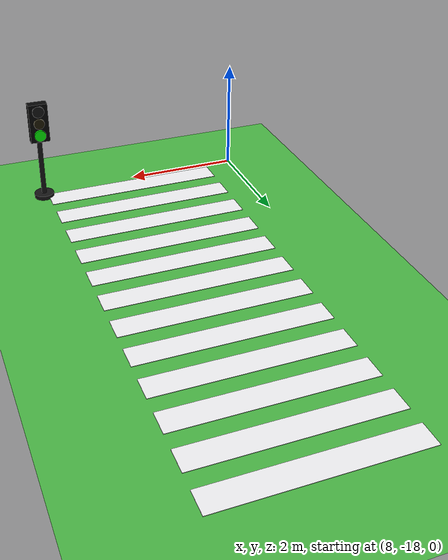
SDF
<sdf version="1.10">
 <world name="city_second">
  <model name="ground_plane">
   <static>true</static>
   <link name="link">
    <collision name="collision">
     <geometry><plane><normal>0 0 1</normal><size>300 300</size></plane></geometry>
    </collision>
    <visual name="visual">
     <geometry><plane><normal>0 0 1</normal><size>300 300</size></plane></geometry>
     <material>
      <ambient>0.280000001 0.689999998 0.25999999 1</ambient>
      <diffuse>0.280000001 0.689999998 0.25999999 1</diffuse>
      <specular>0.0299999993 0.0299999993 0.0299999993 1</specular>
     </material>
    </visual>
    <inertial>
     <mass>1</mass>
     <inertia><ixx>1</ixx><ixy>0</ixy><ixz>0</ixz><iyy>1</iyy><iyz>0</iyz><izz>1</izz></inertia>
    </inertial>
   </link>
  </model>
  <model name="crosswalk_v_2_1_east_5_3">
   <static>true</static>
   <pose>10.1084 -13.809400000000002 0.017000000000000001 0 0 0</pose>
   <link name="stripe_1">
    <collision name="collision">
     <geometry><box><size>3.2000000000000002 0.41999999999999998 0.01</size></box></geometry>
    </collision>
    <visual name="visual">
     <geometry><box><size>3.2000000000000002 0.41999999999999998 0.01</size></box></geometry>
     <material>
      <ambient>0.920000017 0.920000017 0.930000007 1</ambient>
      <diffuse>0.920000017 0.920000017 0.930000007 1</diffuse>
      <specular>0.0299999993 0.0299999993 0.0299999993 1</specular>
     </material>
    </visual>
    <pose>0 -3.8500000000000001 0 0 0 0</pose>
    <inertial>
     <mass>1</mass>
     <inertia><ixx>1</ixx><ixy>0</ixy><ixz>0</ixz><iyy>1</iyy><iyz>0</iyz><izz>1</izz></inertia>
    </inertial>
   </link>
   <link name="stripe_2">
    <collision name="collision">
     <geometry><box><size>3.2000000000000002 0.41999999999999998 0.01</size></box></geometry>
    </collision>
    <visual name="visual">
     <geometry><box><size>3.2000000000000002 0.41999999999999998 0.01</size></box></geometry>
     <material>
      <ambient>0.920000017 0.920000017 0.930000007 1</ambient>
      <diffuse>0.920000017 0.920000017 0.930000007 1</diffuse>
      <specular>0.0299999993 0.0299999993 0.0299999993 1</specular>
     </material>
    </visual>
    <pose>0 -3.1499999999999968 0 0 0 0</pose>
    <inertial>
     <mass>1</mass>
     <inertia><ixx>1</ixx><ixy>0</ixy><ixz>0</ixz><iyy>1</iyy><iyz>0</iyz><izz>1</izz></inertia>
    </inertial>
   </link>
   <link name="stripe_3">
    <collision name="collision">
     <geometry><box><size>3.2000000000000002 0.41999999999999998 0.01</size></box></geometry>
    </collision>
    <visual name="visual">
     <geometry><box><size>3.2000000000000002 0.41999999999999998 0.01</size></box></geometry>
     <material>
      <ambient>0.920000017 0.920000017 0.930000007 1</ambient>
      <diffuse>0.920000017 0.920000017 0.930000007 1</diffuse>
      <specular>0.0299999993 0.0299999993 0.0299999993 1</specular>
     </material>
    </visual>
    <pose>0 -2.4499999999999975 0 0 0 0</pose>
    <inertial>
     <mass>1</mass>
     <inertia><ixx>1</ixx><ixy>0</ixy><ixz>0</ixz><iyy>1</iyy><iyz>0</iyz><izz>1</izz></inertia>
    </inertial>
   </link>
   <link name="stripe_4">
    <collision name="collision">
     <geometry><box><size>3.2000000000000002 0.41999999999999998 0.01</size></box></geometry>
    </collision>
    <visual name="visual">
     <geometry><box><size>3.2000000000000002 0.41999999999999998 0.01</size></box></geometry>
     <material>
      <ambient>0.920000017 0.920000017 0.930000007 1</ambient>
      <diffuse>0.920000017 0.920000017 0.930000007 1</diffuse>
      <specular>0.0299999993 0.0299999993 0.0299999993 1</specular>
     </material>
    </visual>
    <pose>0 -1.7499999999999982 0 0 0 0</pose>
    <inertial>
     <mass>1</mass>
     <inertia><ixx>1</ixx><ixy>0</ixy><ixz>0</ixz><iyy>1</iyy><iyz>0</iyz><izz>1</izz></inertia>
    </inertial>
   </link>
   <link name="stripe_5">
    <collision name="collision">
     <geometry><box><size>3.2000000000000002 0.41999999999999998 0.01</size></box></geometry>
    </collision>
    <visual name="visual">
     <geometry><box><size>3.2000000000000002 0.41999999999999998 0.01</size></box></geometry>
     <material>
      <ambient>0.920000017 0.920000017 0.930000007 1</ambient>
      <diffuse>0.920000017 0.920000017 0.930000007 1</diffuse>
      <specular>0.0299999993 0.0299999993 0.0299999993 1</specular>
     </material>
    </visual>
    <pose>0 -1.0499999999999989 0 0 0 0</pose>
    <inertial>
     <mass>1</mass>
     <inertia><ixx>1</ixx><ixy>0</ixy><ixz>0</ixz><iyy>1</iyy><iyz>0</iyz><izz>1</izz></inertia>
    </inertial>
   </link>
   <link name="stripe_6">
    <collision name="collision">
     <geometry><box><size>3.2000000000000002 0.41999999999999998 0.01</size></box></geometry>
    </collision>
    <visual name="visual">
     <geometry><box><size>3.2000000000000002 0.41999999999999998 0.01</size></box></geometry>
     <material>
      <ambient>0.920000017 0.920000017 0.930000007 1</ambient>
      <diffuse>0.920000017 0.920000017 0.930000007 1</diffuse>
      <specular>0.0299999993 0.0299999993 0.0299999993 1</specular>
     </material>
    </visual>
    <pose>0 -0.34999999999999787 0 0 0 0</pose>
    <inertial>
     <mass>1</mass>
     <inertia><ixx>1</ixx><ixy>0</ixy><ixz>0</ixz><iyy>1</iyy><iyz>0</iyz><izz>1</izz></inertia>
    </inertial>
   </link>
   <link name="stripe_7">
    <collision name="collision">
     <geometry><box><size>3.2000000000000002 0.41999999999999998 0.01</size></box></geometry>
    </collision>
    <visual name="visual">
     <geometry><box><size>3.2000000000000002 0.41999999999999998 0.01</size></box></geometry>
     <material>
      <ambient>0.920000017 0.920000017 0.930000007 1</ambient>
      <diffuse>0.920000017 0.920000017 0.930000007 1</diffuse>
      <specular>0.0299999993 0.0299999993 0.0299999993 1</specular>
     </material>
    </visual>
    <pose>0 0.35000000000000142 0 0 0 0</pose>
    <inertial>
     <mass>1</mass>
     <inertia><ixx>1</ixx><ixy>0</ixy><ixz>0</ixz><iyy>1</iyy><iyz>0</iyz><izz>1</izz></inertia>
    </inertial>
   </link>
   <link name="stripe_8">
    <collision name="collision">
     <geometry><box><size>3.2000000000000002 0.41999999999999998 0.01</size></box></geometry>
    </collision>
    <visual name="visual">
     <geometry><box><size>3.2000000000000002 0.41999999999999998 0.01</size></box></geometry>
     <material>
      <ambient>0.920000017 0.920000017 0.930000007 1</ambient>
      <diffuse>0.920000017 0.920000017 0.930000007 1</diffuse>
      <specular>0.0299999993 0.0299999993 0.0299999993 1</specular>
     </material>
    </visual>
    <pose>0 1.0500000000000025 0 0 0 0</pose>
    <inertial>
     <mass>1</mass>
     <inertia><ixx>1</ixx><ixy>0</ixy><ixz>0</ixz><iyy>1</iyy><iyz>0</iyz><izz>1</izz></inertia>
    </inertial>
   </link>
   <link name="stripe_9">
    <collision name="collision">
     <geometry><box><size>3.2000000000000002 0.41999999999999998 0.01</size></box></geometry>
    </collision>
    <visual name="visual">
     <geometry><box><size>3.2000000000000002 0.41999999999999998 0.01</size></box></geometry>
     <material>
      <ambient>0.920000017 0.920000017 0.930000007 1</ambient>
      <diffuse>0.920000017 0.920000017 0.930000007 1</diffuse>
      <specular>0.0299999993 0.0299999993 0.0299999993 1</specular>
     </material>
    </visual>
    <pose>0 1.7500000000000018 0 0 0 0</pose>
    <inertial>
     <mass>1</mass>
     <inertia><ixx>1</ixx><ixy>0</ixy><ixz>0</ixz><iyy>1</iyy><iyz>0</iyz><izz>1</izz></inertia>
    </inertial>
   </link>
   <link name="stripe_10">
    <collision name="collision">
     <geometry><box><size>3.2000000000000002 0.41999999999999998 0.01</size></box></geometry>
    </collision>
    <visual name="visual">
     <geometry><box><size>3.2000000000000002 0.41999999999999998 0.01</size></box></geometry>
     <material>
      <ambient>0.920000017 0.920000017 0.930000007 1</ambient>
      <diffuse>0.920000017 0.920000017 0.930000007 1</diffuse>
      <specular>0.0299999993 0.0299999993 0.0299999993 1</specular>
     </material>
    </visual>
    <pose>0 2.4500000000000011 0 0 0 0</pose>
    <inertial>
     <mass>1</mass>
     <inertia><ixx>1</ixx><ixy>0</ixy><ixz>0</ixz><iyy>1</iyy><iyz>0</iyz><izz>1</izz></inertia>
    </inertial>
   </link>
   <link name="stripe_11">
    <collision name="collision">
     <geometry><box><size>3.2000000000000002 0.41999999999999998 0.01</size></box></geometry>
    </collision>
    <visual name="visual">
     <geometry><box><size>3.2000000000000002 0.41999999999999998 0.01</size></box></geometry>
     <material>
      <ambient>0.920000017 0.920000017 0.930000007 1</ambient>
      <diffuse>0.920000017 0.920000017 0.930000007 1</diffuse>
      <specular>0.0299999993 0.0299999993 0.0299999993 1</specular>
     </material>
    </visual>
    <pose>0 3.1500000000000021 0 0 0 0</pose>
    <inertial>
     <mass>1</mass>
     <inertia><ixx>1</ixx><ixy>0</ixy><ixz>0</ixz><iyy>1</iyy><iyz>0</iyz><izz>1</izz></inertia>
    </inertial>
   </link>
   <link name="stripe_12">
    <collision name="collision">
     <geometry><box><size>3.2000000000000002 0.41999999999999998 0.01</size></box></geometry>
    </collision>
    <visual name="visual">
     <geometry><box><size>3.2000000000000002 0.41999999999999998 0.01</size></box></geometry>
     <material>
      <ambient>0.920000017 0.920000017 0.930000007 1</ambient>
      <diffuse>0.920000017 0.920000017 0.930000007 1</diffuse>
      <specular>0.0299999993 0.0299999993 0.0299999993 1</specular>
     </material>
    </visual>
    <pose>0 3.8500000000000014 0 0 0 0</pose>
    <inertial>
     <mass>1</mass>
     <inertia><ixx>1</ixx><ixy>0</ixy><ixz>0</ixz><iyy>1</iyy><iyz>0</iyz><izz>1</izz></inertia>
    </inertial>
   </link>
  </model>
  <model name="simple_traffic_light_green_north_1_2">
   <static>true</static>
   <pose>11.777170378205799 -17.868153238986416 0 0 0 0</pose>
   <link name="base">
    <pose>0 0 0.040000000000000001 0 0 0</pose>
    <collision name="collision">
     <geometry>
      <cylinder><radius>0.17999999999999999</radius><length>0.080000000000000002</length></cylinder>
     </geometry>
    </collision>
    <visual name="visual">
     <geometry>
      <cylinder><radius>0.17999999999999999</radius><length>0.080000000000000002</length></cylinder>
     </geometry>
     <material>
      <ambient>0.0799999982 0.0799999982 0.0799999982 1</ambient>
      <diffuse>0.0799999982 0.0799999982 0.0799999982 1</diffuse>
      <specular>0.150000006 0.150000006 0.150000006 1</specular>
      <emissive>0 0 0 1</emissive>
     </material>
    </visual>
    <inertial>
     <mass>1</mass>
     <inertia><ixx>1</ixx><ixy>0</ixy><ixz>0</ixz><iyy>1</iyy><iyz>0</iyz><izz>1</izz></inertia>
    </inertial>
   </link>
   <link name="pole">
    <pose>0 0 0.80000000000000004 0 0 0</pose>
    <collision name="collision">
     <geometry>
      <cylinder><radius>0.044999999999999998</radius><length>1.6000000000000001</length></cylinder>
     </geometry>
    </collision>
    <visual name="visual">
     <geometry>
      <cylinder><radius>0.044999999999999998</radius><length>1.6000000000000001</length></cylinder>
     </geometry>
     <material>
      <ambient>0.0799999982 0.0799999982 0.0799999982 1</ambient>
      <diffuse>0.0799999982 0.0799999982 0.0799999982 1</diffuse>
      <specular>0.150000006 0.150000006 0.150000006 1</specular>
      <emissive>0 0 0 1</emissive>
     </material>
    </visual>
    <inertial>
     <mass>1</mass>
     <inertia><ixx>1</ixx><ixy>0</ixy><ixz>0</ixz><iyy>1</iyy><iyz>0</iyz><izz>1</izz></inertia>
    </inertial>
   </link>
   <link name="signal_box">
    <pose>0 0.089999999999999858 1.55 0 0 0</pose>
    <collision name="collision">
     <geometry><box><size>0.34000000000000002 0.16 0.71999999999999997</size></box></geometry>
    </collision>
    <visual name="visual">
     <geometry><box><size>0.34000000000000002 0.16 0.71999999999999997</size></box></geometry>
     <material>
      <ambient>0.0199999996 0.0199999996 0.0199999996 1</ambient>
      <diffuse>0.0199999996 0.0199999996 0.0199999996 1</diffuse>
      <specular>0.150000006 0.150000006 0.150000006 1</specular>
      <emissive>0 0 0 1</emissive>
     </material>
    </visual>
    <inertial>
     <mass>1</mass>
     <inertia><ixx>1</ixx><ixy>0</ixy><ixz>0</ixz><iyy>1</iyy><iyz>0</iyz><izz>1</izz></inertia>
    </inertial>
   </link>
   <link name="red_lens">
    <pose>0 0.18100000000000094 1.78 1.5707963268000003 0 0</pose>
    <collision name="collision">
     <geometry><cylinder><radius>0.105</radius><length>0.035000000000000003</length></cylinder></geometry>
    </collision>
    <visual name="visual">
     <geometry><cylinder><radius>0.105</radius><length>0.035000000000000003</length></cylinder></geometry>
     <material>
      <ambient>0.0799999982 0.0799999982 0.0799999982 1</ambient>
      <diffuse>0.0799999982 0.0799999982 0.0799999982 1</diffuse>
      <specular>0.150000006 0.150000006 0.150000006 1</specular>
      <emissive>0 0 0 1</emissive>
     </material>
    </visual>
    <inertial>
     <mass>1</mass>
     <inertia><ixx>1</ixx><ixy>0</ixy><ixz>0</ixz><iyy>1</iyy><iyz>0</iyz><izz>1</izz></inertia>
    </inertial>
   </link>
   <link name="yellow_lens">
    <pose>0 0.18199999999999861 1.55 1.5707963268000003 0 0</pose>
    <collision name="collision">
     <geometry>
      <cylinder><radius>0.095000000000000001</radius><length>0.035000000000000003</length></cylinder>
     </geometry>
    </collision>
    <visual name="visual">
     <geometry>
      <cylinder><radius>0.095000000000000001</radius><length>0.035000000000000003</length></cylinder>
     </geometry>
     <material>
      <ambient>0.119999997 0.100000001 0.0199999996 1</ambient>
      <diffuse>0.119999997 0.100000001 0.0199999996 1</diffuse>
      <specular>0.150000006 0.150000006 0.150000006 1</specular>
      <emissive>0 0 0 1</emissive>
     </material>
    </visual>
    <inertial>
     <mass>1</mass>
     <inertia><ixx>1</ixx><ixy>0</ixy><ixz>0</ixz><iyy>1</iyy><iyz>0</iyz><izz>1</izz></inertia>
    </inertial>
   </link>
   <link name="green_lens">
    <pose>0 0.18299999999999983 1.3200000000000001 1.5707963268000003 0 0</pose>
    <collision name="collision">
     <geometry><cylinder><radius>0.105</radius><length>0.035000000000000003</length></cylinder></geometry>
    </collision>
    <visual name="visual">
     <geometry><cylinder><radius>0.105</radius><length>0.035000000000000003</length></cylinder></geometry>
     <material>
      <ambient>0.0199999996 1 0.0199999996 1</ambient>
      <diffuse>0.0199999996 1 0.0199999996 1</diffuse>
      <specular>0.150000006 0.150000006 0.150000006 1</specular>
      <emissive>0.0199999996 1 0.0199999996 1</emissive>
     </material>
    </visual>
    <inertial>
     <mass>1</mass>
     <inertia><ixx>1</ixx><ixy>0</ixy><ixz>0</ixz><iyy>1</iyy><iyz>0</iyz><izz>1</izz></inertia>
    </inertial>
   </link>
  </model>
 </world>
</sdf>
